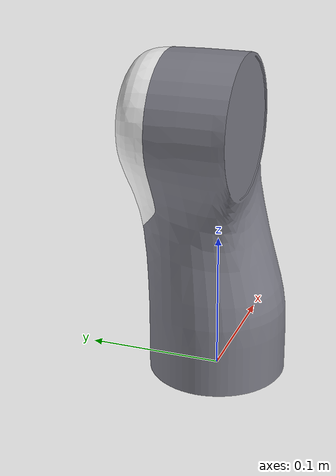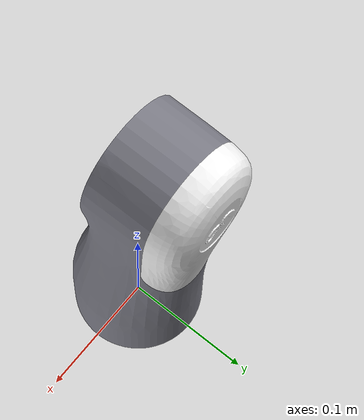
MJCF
<mujoco model="link3">
  <default>
    <default class="visual">
      <geom group="2" type="mesh" contype="0" conaffinity="0"/>
    </default>
    <default class="collision">
      <geom group="3" type="mesh"/>
    </default>
  </default>
  <asset>
    <material name="cover" specular="0.072304" shininess="0.092156872" rgba="0.969921 0.969921 0.969921 1.000000"/>
    <material name="robot" specular="0.600013" shininess="0.015686281" rgba="0.487364 0.487364 0.527718 1.000000"/>
    <mesh file="link3_0.obj"/>
    <mesh file="link3_1.obj"/>
  </asset>
  <worldbody>
    <body name="link3">
      <geom mesh="link3_0" material="robot" class="visual"/>
      <geom mesh="link3_1" material="cover" class="visual"/>
      <geom mesh="link3_0" class="collision"/>
      <geom mesh="link3_1" class="collision"/>
    </body>
  </worldbody>
</mujoco>
